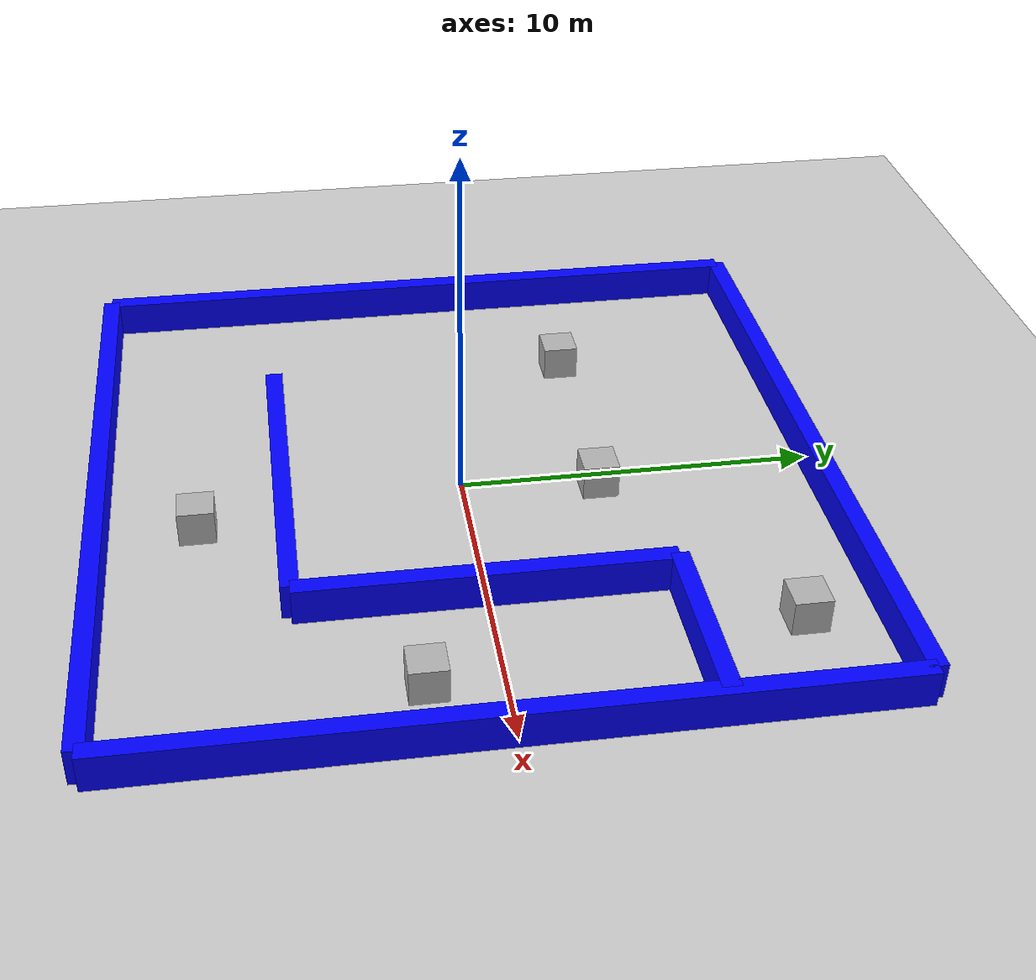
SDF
<sdf version='1.10'>
  <world name='walled_world'>
    <gravity>0 0 -9.8000000000000007</gravity>
    <magnetic_field>5.5644999999999998e-06 2.2875799999999999e-05 -4.2388400000000002e-05</magnetic_field>
    <atmosphere type='adiabatic'/>
    <physics type='ode'>
      <max_step_size>0.001</max_step_size>
      <real_time_factor>1</real_time_factor>
      <real_time_update_rate>1000</real_time_update_rate>
    </physics>
    <scene>
      <ambient>0.400000006 0.400000006 0.400000006 1</ambient>
      <background>0.699999988 0.699999988 0.699999988 1</background>
      <shadows>true</shadows>
    </scene>
    <model name='ground_plane'>
      <static>true</static>
      <link name='link'>
        <collision name='collision'>
          <geometry>
            <plane>
              <normal>0 0 1</normal>
              <size>1 1</size>
            </plane>
          </geometry>
          <surface>
            <friction>
              <ode/>
            </friction>
            <bounce/>
            <contact/>
          </surface>
        </collision>
        <visual name='visual'>
          <geometry>
            <plane>
              <normal>0 0 1</normal>
              <size>100 100</size>
            </plane>
          </geometry>
          <material>
            <ambient>0.800000012 0.800000012 0.800000012 1</ambient>
            <diffuse>0.800000012 0.800000012 0.800000012 1</diffuse>
            <specular>0.800000012 0.800000012 0.800000012 1</specular>
          </material>
        </visual>
        <pose>0 0 0 0 0 0</pose>
        <inertial>
          <pose>0 0 0 0 0 0</pose>
          <mass>1</mass>
          <inertia>
            <ixx>1</ixx>
            <ixy>0</ixy>
            <ixz>0</ixz>
            <iyy>1</iyy>
            <iyz>0</iyz>
            <izz>1</izz>
          </inertia>
        </inertial>
        <enable_wind>false</enable_wind>
      </link>
      <pose>0 0 0 0 0 0</pose>
      <self_collide>false</self_collide>
    </model>
    <model name='wall_1'>
      <static>true</static>
      <pose>10 0 0 0 0 0</pose>
      <link name='box'>
        <visual name='visual'>
          <geometry>
            <box>
              <size>0.5 20 2</size>
            </box>
          </geometry>
          <material>
            <ambient>0 0 1 1</ambient>
            <diffuse>0 0 1 1</diffuse>
            <specular>0 0 1 1</specular>
          </material>
        </visual>
        <collision name='collision'>
          <geometry>
            <box>
              <size>0.5 20 2</size>
            </box>
          </geometry>
          <surface>
            <friction>
              <ode/>
            </friction>
            <bounce/>
            <contact/>
          </surface>
        </collision>
        <pose>0 0 0 0 0 0</pose>
        <inertial>
          <pose>0 0 0 0 0 0</pose>
          <mass>1</mass>
          <inertia>
            <ixx>1</ixx>
            <ixy>0</ixy>
            <ixz>0</ixz>
            <iyy>1</iyy>
            <iyz>0</iyz>
            <izz>1</izz>
          </inertia>
        </inertial>
        <enable_wind>false</enable_wind>
      </link>
      <self_collide>false</self_collide>
    </model>
    <model name='wall_2'>
      <static>true</static>
      <pose>0 10 0 0 0 1.5709999999999995</pose>
      <link name='box'>
        <visual name='visual'>
          <geometry>
            <box>
              <size>0.5 20 2</size>
            </box>
          </geometry>
          <material>
            <ambient>0 0 1 1</ambient>
            <diffuse>0 0 1 1</diffuse>
            <specular>0 0 1 1</specular>
          </material>
        </visual>
        <collision name='collision'>
          <geometry>
            <box>
              <size>0.5 20 2</size>
            </box>
          </geometry>
          <surface>
            <friction>
              <ode/>
            </friction>
            <bounce/>
            <contact/>
          </surface>
        </collision>
        <pose>0 0 0 0 0 0</pose>
        <inertial>
          <pose>0 0 0 0 0 0</pose>
          <mass>1</mass>
          <inertia>
            <ixx>1</ixx>
            <ixy>0</ixy>
            <ixz>0</ixz>
            <iyy>1</iyy>
            <iyz>0</iyz>
            <izz>1</izz>
          </inertia>
        </inertial>
        <enable_wind>false</enable_wind>
      </link>
      <self_collide>false</self_collide>
    </model>
    <model name='wall_3'>
      <static>true</static>
      <pose>0 -10 0 0 0 1.5709999999999995</pose>
      <link name='box'>
        <visual name='visual'>
          <geometry>
            <box>
              <size>0.5 20 2</size>
            </box>
          </geometry>
          <material>
            <ambient>0 0 1 1</ambient>
            <diffuse>0 0 1 1</diffuse>
            <specular>0 0 1 1</specular>
          </material>
        </visual>
        <collision name='collision'>
          <geometry>
            <box>
              <size>0.5 20 2</size>
            </box>
          </geometry>
          <surface>
            <friction>
              <ode/>
            </friction>
            <bounce/>
            <contact/>
          </surface>
        </collision>
        <pose>0 0 0 0 0 0</pose>
        <inertial>
          <pose>0 0 0 0 0 0</pose>
          <mass>1</mass>
          <inertia>
            <ixx>1</ixx>
            <ixy>0</ixy>
            <ixz>0</ixz>
            <iyy>1</iyy>
            <iyz>0</iyz>
            <izz>1</izz>
          </inertia>
        </inertial>
        <enable_wind>false</enable_wind>
      </link>
      <self_collide>false</self_collide>
    </model>
    <model name='wall_4'>
      <static>true</static>
      <pose>-10 0 0 0 0 0</pose>
      <link name='box'>
        <visual name='visual'>
          <geometry>
            <box>
              <size>0.5 20 2</size>
            </box>
          </geometry>
          <material>
            <ambient>0 0 1 1</ambient>
            <diffuse>0 0 1 1</diffuse>
            <specular>0 0 1 1</specular>
          </material>
        </visual>
        <collision name='collision'>
          <geometry>
            <box>
              <size>0.5 20 2</size>
            </box>
          </geometry>
          <surface>
            <friction>
              <ode/>
            </friction>
            <bounce/>
            <contact/>
          </surface>
        </collision>
        <pose>0 0 0 0 0 0</pose>
        <inertial>
          <pose>0 0 0 0 0 0</pose>
          <mass>1</mass>
          <inertia>
            <ixx>1</ixx>
            <ixy>0</ixy>
            <ixz>0</ixz>
            <iyy>1</iyy>
            <iyz>0</iyz>
            <izz>1</izz>
          </inertia>
        </inertial>
        <enable_wind>false</enable_wind>
      </link>
      <self_collide>false</self_collide>
    </model>
    <model name='wall_5'>
      <static>true</static>
      <pose>5 0 0 0 0 0</pose>
      <link name='box'>
        <visual name='visual'>
          <geometry>
            <box>
              <size>0.5 10 2</size>
            </box>
          </geometry>
          <material>
            <ambient>0 0 1 1</ambient>
            <diffuse>0 0 1 1</diffuse>
            <specular>0 0 1 1</specular>
          </material>
        </visual>
        <collision name='collision'>
          <geometry>
            <box>
              <size>0.5 10 2</size>
            </box>
          </geometry>
          <surface>
            <friction>
              <ode/>
            </friction>
            <bounce/>
            <contact/>
          </surface>
        </collision>
        <pose>0 0 0 0 0 0</pose>
        <inertial>
          <pose>0 0 0 0 0 0</pose>
          <mass>1</mass>
          <inertia>
            <ixx>1</ixx>
            <ixy>0</ixy>
            <ixz>0</ixz>
            <iyy>1</iyy>
            <iyz>0</iyz>
            <izz>1</izz>
          </inertia>
        </inertial>
        <enable_wind>false</enable_wind>
      </link>
      <self_collide>false</self_collide>
    </model>
    <model name='wall_6'>
      <static>true</static>
      <pose>7.5 5 0 0 0 1.5709999999999995</pose>
      <link name='box'>
        <visual name='visual'>
          <geometry>
            <box>
              <size>0.5 5 2</size>
            </box>
          </geometry>
          <material>
            <ambient>0 0 1 1</ambient>
            <diffuse>0 0 1 1</diffuse>
            <specular>0 0 1 1</specular>
          </material>
        </visual>
        <collision name='collision'>
          <geometry>
            <box>
              <size>0.5 5 2</size>
            </box>
          </geometry>
          <surface>
            <friction>
              <ode/>
            </friction>
            <bounce/>
            <contact/>
          </surface>
        </collision>
        <pose>0 0 0 0 0 0</pose>
        <inertial>
          <pose>0 0 0 0 0 0</pose>
          <mass>1</mass>
          <inertia>
            <ixx>1</ixx>
            <ixy>0</ixy>
            <ixz>0</ixz>
            <iyy>1</iyy>
            <iyz>0</iyz>
            <izz>1</izz>
          </inertia>
        </inertial>
        <enable_wind>false</enable_wind>
      </link>
      <self_collide>false</self_collide>
    </model>
    <model name='wall_7'>
      <static>true</static>
      <pose>0 -5 0 0 0 1.5709999999999995</pose>
      <link name='box'>
        <visual name='visual'>
          <geometry>
            <box>
              <size>0.5 10 2</size>
            </box>
          </geometry>
          <material>
            <ambient>0 0 1 1</ambient>
            <diffuse>0 0 1 1</diffuse>
            <specular>0 0 1 1</specular>
          </material>
        </visual>
        <collision name='collision'>
          <geometry>
            <box>
              <size>0.5 10 2</size>
            </box>
          </geometry>
          <surface>
            <friction>
              <ode/>
            </friction>
            <bounce/>
            <contact/>
          </surface>
        </collision>
        <pose>0 0 0 0 0 0</pose>
        <inertial>
          <pose>0 0 0 0 0 0</pose>
          <mass>1</mass>
          <inertia>
            <ixx>1</ixx>
            <ixy>0</ixy>
            <ixz>0</ixz>
            <iyy>1</iyy>
            <iyz>0</iyz>
            <izz>1</izz>
          </inertia>
        </inertial>
        <enable_wind>false</enable_wind>
      </link>
      <self_collide>false</self_collide>
    </model>
    <model name='box'>
      <pose>6.9119805168596216 7.8178528501006861 0.49999999990199806 1.6258879611171386e-25 2.8834196501176479e-21 -1.4428456090324048e-22</pose>
      <link name='box_link'>
        <inertial>
          <inertia>
            <ixx>0.16666</ixx>
            <ixy>0</ixy>
            <ixz>0</ixz>
            <iyy>0.16666</iyy>
            <iyz>0</iyz>
            <izz>0.16666</izz>
          </inertia>
          <mass>1</mass>
          <pose>0 0 0 0 0 0</pose>
        </inertial>
        <collision name='box_collision'>
          <geometry>
            <box>
              <size>1 1 1</size>
            </box>
          </geometry>
          <surface>
            <friction>
              <ode/>
            </friction>
            <bounce/>
            <contact/>
          </surface>
        </collision>
        <visual name='box_visual'>
          <geometry>
            <box>
              <size>1 1 1</size>
            </box>
          </geometry>
          <material>
            <ambient>0.300000012 0.300000012 0.300000012 1</ambient>
            <diffuse>0.699999988 0.699999988 0.699999988 1</diffuse>
            <specular>1 1 1 1</specular>
          </material>
        </visual>
        <pose>0 0 0 0 0 0</pose>
        <enable_wind>false</enable_wind>
      </link>
      <static>false</static>
      <self_collide>false</self_collide>
    </model>
    <model name='box_0'>
      <pose>0.61416978918597565 3.7840251661247191 0.49999999990199806 6.2287739151293738e-22 9.3279666454713669e-22 -3.6315533669320137e-22</pose>
      <link name='box_link'>
        <inertial>
          <inertia>
            <ixx>0.16666</ixx>
            <ixy>0</ixy>
            <ixz>0</ixz>
            <iyy>0.16666</iyy>
            <iyz>0</iyz>
            <izz>0.16666</izz>
          </inertia>
          <mass>1</mass>
          <pose>0 0 0 0 0 0</pose>
        </inertial>
        <collision name='box_collision'>
          <geometry>
            <box>
              <size>1 1 1</size>
            </box>
          </geometry>
          <surface>
            <friction>
              <ode/>
            </friction>
            <bounce/>
            <contact/>
          </surface>
        </collision>
        <visual name='box_visual'>
          <geometry>
            <box>
              <size>1 1 1</size>
            </box>
          </geometry>
          <material>
            <ambient>0.300000012 0.300000012 0.300000012 1</ambient>
            <diffuse>0.699999988 0.699999988 0.699999988 1</diffuse>
            <specular>1 1 1 1</specular>
          </material>
        </visual>
        <pose>0 0 0 0 0 0</pose>
        <enable_wind>false</enable_wind>
      </link>
      <static>false</static>
      <self_collide>false</self_collide>
    </model>
    <model name='box_1'>
      <pose>-5.6817150184841818 3.8059535224489558 0.49999999990199806 6.2287739151293738e-22 9.3279666454713669e-22 -3.6315533669320137e-22</pose>
      <link name='box_link'>
        <inertial>
          <inertia>
            <ixx>0.16666</ixx>
            <ixy>0</ixy>
            <ixz>0</ixz>
            <iyy>0.16666</iyy>
            <iyz>0</iyz>
            <izz>0.16666</izz>
          </inertia>
          <mass>1</mass>
          <pose>0 0 0 0 0 0</pose>
        </inertial>
        <collision name='box_collision'>
          <geometry>
            <box>
              <size>1 1 1</size>
            </box>
          </geometry>
          <surface>
            <friction>
              <ode/>
            </friction>
            <bounce/>
            <contact/>
          </surface>
        </collision>
        <visual name='box_visual'>
          <geometry>
            <box>
              <size>1 1 1</size>
            </box>
          </geometry>
          <material>
            <ambient>0.300000012 0.300000012 0.300000012 1</ambient>
            <diffuse>0.699999988 0.699999988 0.699999988 1</diffuse>
            <specular>1 1 1 1</specular>
          </material>
        </visual>
        <pose>0 0 0 0 0 0</pose>
        <enable_wind>false</enable_wind>
      </link>
      <static>false</static>
      <self_collide>false</self_collide>
    </model>
    <model name='box_2'>
      <pose>1.2030455244900615 -7.3440946114609007 0.49999999990199806 6.2287739151293738e-22 9.3279666454713669e-22 -3.6315533669320137e-22</pose>
      <link name='box_link'>
        <inertial>
          <inertia>
            <ixx>0.16666</ixx>
            <ixy>0</ixy>
            <ixz>0</ixz>
            <iyy>0.16666</iyy>
            <iyz>0</iyz>
            <izz>0.16666</izz>
          </inertia>
          <mass>1</mass>
          <pose>0 0 0 0 0 0</pose>
        </inertial>
        <collision name='box_collision'>
          <geometry>
            <box>
              <size>1 1 1</size>
            </box>
          </geometry>
          <surface>
            <friction>
              <ode/>
            </friction>
            <bounce/>
            <contact/>
          </surface>
        </collision>
        <visual name='box_visual'>
          <geometry>
            <box>
              <size>1 1 1</size>
            </box>
          </geometry>
          <material>
            <ambient>0.300000012 0.300000012 0.300000012 1</ambient>
            <diffuse>0.699999988 0.699999988 0.699999988 1</diffuse>
            <specular>1 1 1 1</specular>
          </material>
        </visual>
        <pose>0 0 0 0 0 0</pose>
        <enable_wind>false</enable_wind>
      </link>
      <static>false</static>
      <self_collide>false</self_collide>
    </model>
    <model name='box_3'>
      <pose>8.074220270990466 -1.9053983774901004 0.49999999990199806 6.2287739151293738e-22 9.3279666454713669e-22 -3.6315533669320137e-22</pose>
      <link name='box_link'>
        <inertial>
          <inertia>
            <ixx>0.16666</ixx>
            <ixy>0</ixy>
            <ixz>0</ixz>
            <iyy>0.16666</iyy>
            <iyz>0</iyz>
            <izz>0.16666</izz>
          </inertia>
          <mass>1</mass>
          <pose>0 0 0 0 0 0</pose>
        </inertial>
        <collision name='box_collision'>
          <geometry>
            <box>
              <size>1 1 1</size>
            </box>
          </geometry>
          <surface>
            <friction>
              <ode/>
            </friction>
            <bounce/>
            <contact/>
          </surface>
        </collision>
        <visual name='box_visual'>
          <geometry>
            <box>
              <size>1 1 1</size>
            </box>
          </geometry>
          <material>
            <ambient>0.300000012 0.300000012 0.300000012 1</ambient>
            <diffuse>0.699999988 0.699999988 0.699999988 1</diffuse>
            <specular>1 1 1 1</specular>
          </material>
        </visual>
        <pose>0 0 0 0 0 0</pose>
        <enable_wind>false</enable_wind>
      </link>
      <static>false</static>
      <self_collide>false</self_collide>
    </model>
    <light name='sun' type='directional'>
      <pose>0 0 10 0 0 0</pose>
      <cast_shadows>true</cast_shadows>
      <intensity>1</intensity>
      <direction>-0.5 0.10000000000000001 -0.90000000000000002</direction>
      <diffuse>0.800000012 0.800000012 0.800000012 1</diffuse>
      <specular>0.200000003 0.200000003 0.200000003 1</specular>
      <attenuation>
        <range>1000</range>
        <linear>0.01</linear>
        <constant>0.90000000000000002</constant>
        <quadratic>0.001</quadratic>
      </attenuation>
      <spot>
        <inner_angle>0</inner_angle>
        <outer_angle>0</outer_angle>
        <falloff>0</falloff>
      </spot>
    </light>
  </world>
</sdf>
